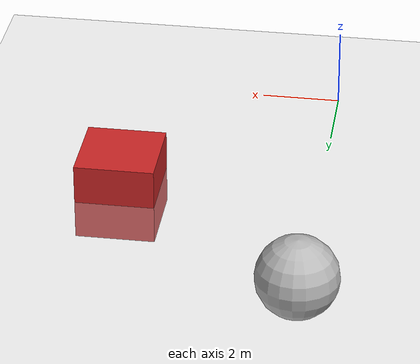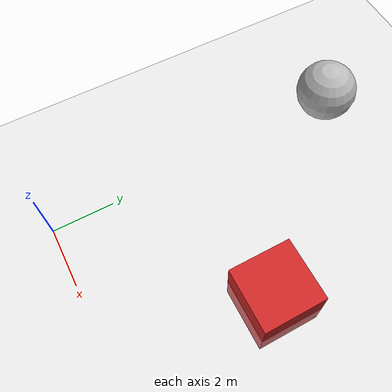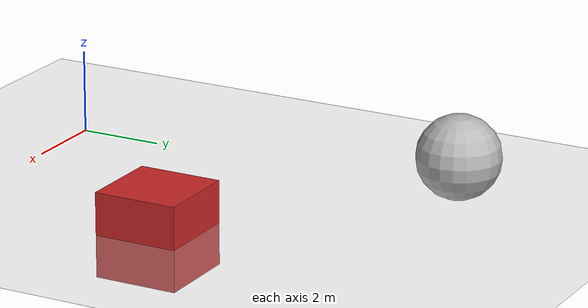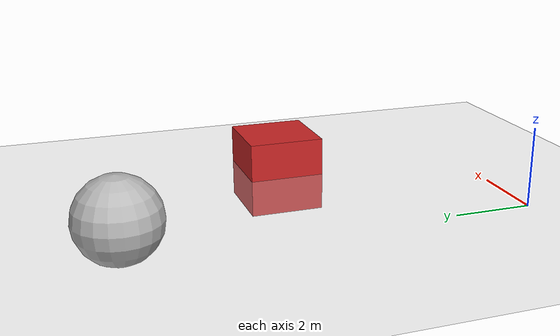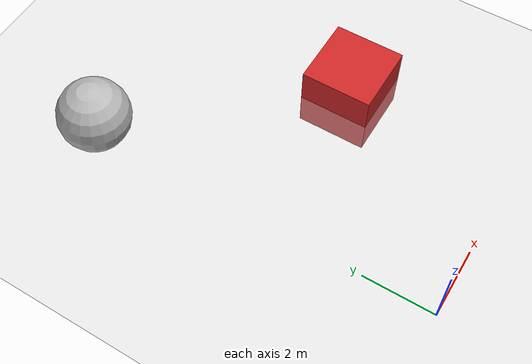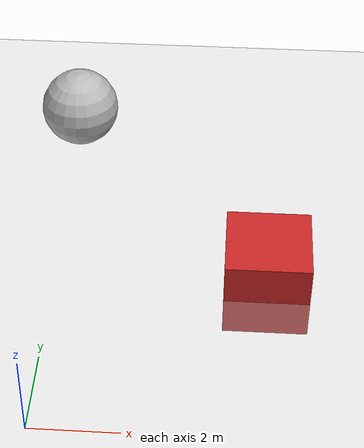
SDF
<?xml version="1.0" ?>
<sdf version="1.6"><world name="test_world"><include><uri>model://sun</uri></include><include><uri>model://ground_plane</uri></include><light name="ambient_light" type="ambient"><cast_shadows>false</cast_shadows></light><light name="sun" type="directional"><direction>-0.5 0.5 0.8</direction><diffuse>0.8 0.8 0.8 1</diffuse><specular>0.1 0.1 0.1 1</specular></light><physics name="default_physics" type="ode"><gravity>0 0 -9.81</gravity><max_step_size>0.001</max_step_size><real_time_factor>1.0</real_time_factor><solver><ode><constraints><cfm>0.0</cfm><erp>0.2</erp></constraints></ode></solver></physics><model name="obstacle_0"><static>true</static><pose>5 5 0 0 0 0</pose><link name="link"><collision name="collision"><geometry><box><size>2 2 2</size></box></geometry></collision><visual name="visual"><geometry><box><size>2 2 2</size></box></geometry><material><script><uri>file://media/materials/scripts/gazebo.material</uri><name>Gazebo/Red</name></script></material></visual></link></model><model name="sphere_obstacle_1"><static>true</static><pose>0 10 1 0 0 0</pose><link name="link"><collision name="collision"><geometry><sphere><radius>1.0</radius></sphere></geometry></collision><visual name="visual"><geometry><sphere><radius>1.0</radius></sphere></geometry><material><script><uri>file://media/materials/scripts/gazebo.material</uri><name>Gazebo/0 255 0</name></script></material></visual></link></model></world></sdf>
